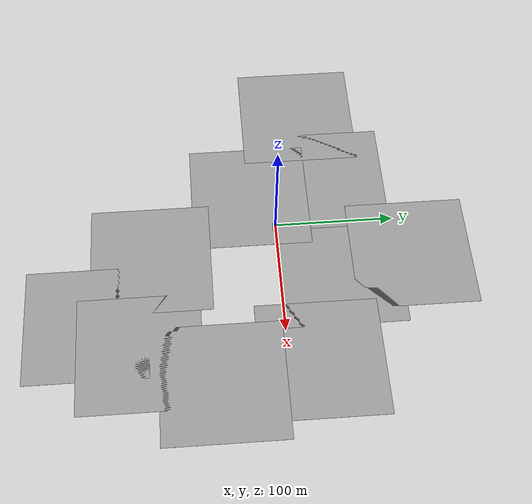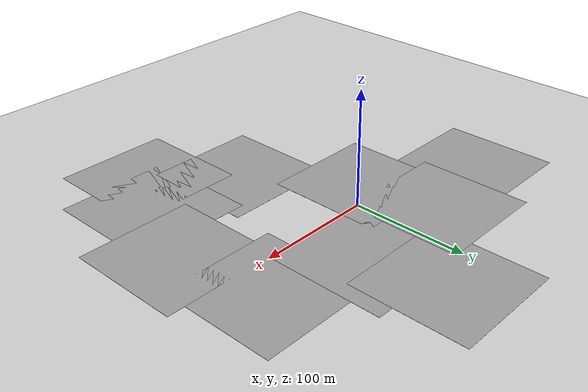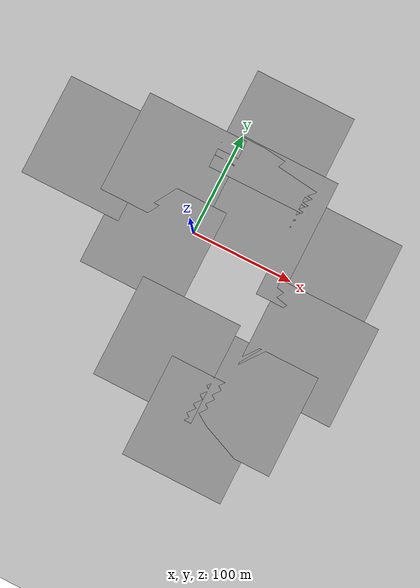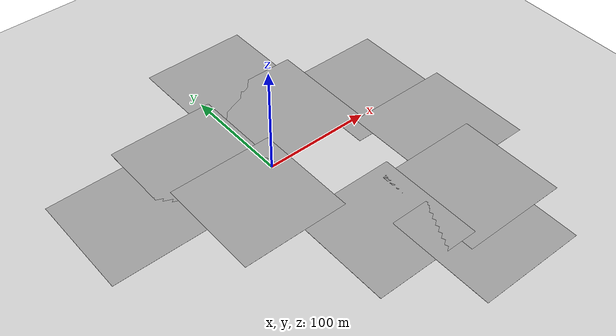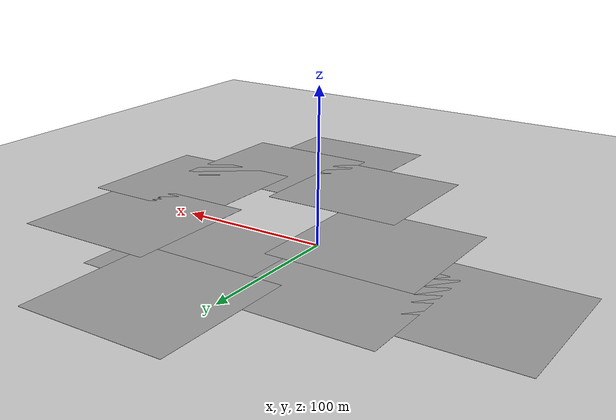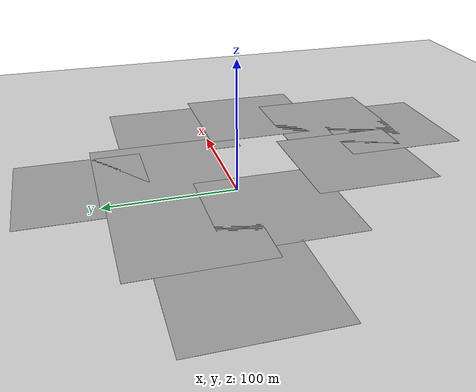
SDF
<sdf version="1.7">
 <world name="default">
  <gravity>0 0 -9.8</gravity>
  <magnetic_field>6e-06 2.3e-05 -4.2e-05</magnetic_field>
  <atmosphere type="adiabatic"/>
  <physics type="ode">
   <max_step_size>0.001</max_step_size>
   <real_time_factor>1</real_time_factor>
   <real_time_update_rate>1000</real_time_update_rate>
  </physics>
  <scene><ambient>0.4 0.4 0.4 1</ambient><background>0.7 0.7 0.7 1</background><shadows>1</shadows></scene>
  <light name="sun" type="directional">
   <pose>0 0 10 0 -0 0</pose>
   <diffuse>0.8 0.8 0.8 1</diffuse>
   <specular>0.2 0.2 0.2 1</specular>
   <attenuation>
    <range>1000</range>
    <constant>0.9</constant>
    <linear>0.01</linear>
    <quadratic>0.001</quadratic>
   </attenuation>
   <direction>-0.5 0.1 -0.9</direction>
   <spot><inner_angle>0</inner_angle><outer_angle>0</outer_angle><falloff>0</falloff></spot>
  </light>
  <spherical_coordinates>
   <surface_model>EARTH_WGS84</surface_model>
   <latitude_deg>0</latitude_deg>
   <longitude_deg>0</longitude_deg>
   <elevation>0</elevation>
   <heading_deg>0</heading_deg>
  </spherical_coordinates>
  <plugin name="gazebo_occupancy_map" filename="libgazebo_2Dmap_plugin.so">
   <map_resolution>0.1</map_resolution>
   <map_height>0.05</map_height>
   <map_size_x>500</map_size_x>
   <map_size_y>500</map_size_y>
   <init_robot_x>0</init_robot_x>
   <init_robot_y>0</init_robot_y>
  </plugin>
  <model name="ground_plane">
   <static>1</static>
   <link name="link">
    <collision name="collision">
     <geometry><plane><normal>0 0 1</normal><size>100 100</size></plane></geometry>
     <surface>
      <contact><collide_bitmask>65535</collide_bitmask></contact>
      <friction><ode><mu>100</mu><mu2>50</mu2></ode></friction>
     </surface>
    </collision>
    <visual name="visual">
     <cast_shadows>0</cast_shadows>
     <geometry><plane><normal>0 0 1</normal><size>100 100</size></plane></geometry>
     <material>
      <script><uri>file://media/materials/scripts/gazebo.material</uri><name>Gazebo/Grey</name></script>
     </material>
    </visual>
   </link>
   <pose>66.1782 -35.4296 0.3 0 -0 0</pose>
  </model>
  <model name="ground_plane_0">
   <static>1</static>
   <link name="link">
    <collision name="collision">
     <geometry><plane><normal>0 0 1</normal><size>100 100</size></plane></geometry>
     <surface>
      <contact><collide_bitmask>65535</collide_bitmask></contact>
      <friction><ode><mu>100</mu><mu2>50</mu2></ode></friction>
     </surface>
    </collision>
    <visual name="visual">
     <cast_shadows>0</cast_shadows>
     <geometry><plane><normal>0 0 1</normal><size>100 100</size></plane></geometry>
     <material>
      <script><uri>file://media/materials/scripts/gazebo.material</uri><name>Gazebo/Grey</name></script>
     </material>
    </visual>
   </link>
   <pose>48.2476 50.6076 0.3 0 -0 0</pose>
  </model>
  <model name="ground_plane_1">
   <static>1</static>
   <link name="link">
    <collision name="collision">
     <geometry><plane><normal>0 0 1</normal><size>100 100</size></plane></geometry>
     <surface>
      <contact><collide_bitmask>65535</collide_bitmask></contact>
      <friction><ode><mu>100</mu><mu2>50</mu2></ode></friction>
     </surface>
    </collision>
    <visual name="visual">
     <cast_shadows>0</cast_shadows>
     <geometry><plane><normal>0 0 1</normal><size>100 100</size></plane></geometry>
     <material>
      <script><uri>file://media/materials/scripts/gazebo.material</uri><name>Gazebo/Grey</name></script>
     </material>
    </visual>
   </link>
   <pose>-44.6161 47.3449 0.3 0 -0 0</pose>
  </model>
  <model name="ground_plane_2">
   <static>1</static>
   <link name="link">
    <collision name="collision">
     <geometry><plane><normal>0 0 1</normal><size>100 100</size></plane></geometry>
     <surface>
      <contact><collide_bitmask>65535</collide_bitmask></contact>
      <friction><ode><mu>100</mu><mu2>50</mu2></ode></friction>
     </surface>
    </collision>
    <visual name="visual">
     <cast_shadows>0</cast_shadows>
     <geometry><plane><normal>0 0 1</normal><size>100 100</size></plane></geometry>
     <material>
      <script><uri>file://media/materials/scripts/gazebo.material</uri><name>Gazebo/Grey</name></script>
     </material>
    </visual>
   </link>
   <pose>-116.631 28.1985 0.3 0 -0 0</pose>
  </model>
  <model name="ground_plane_3">
   <static>1</static>
   <link name="link">
    <collision name="collision">
     <geometry><plane><normal>0 0 1</normal><size>100 100</size></plane></geometry>
     <surface>
      <contact><collide_bitmask>65535</collide_bitmask></contact>
      <friction><ode><mu>100</mu><mu2>50</mu2></ode></friction>
     </surface>
    </collision>
    <visual name="visual">
     <cast_shadows>0</cast_shadows>
     <geometry><plane><normal>0 0 1</normal><size>100 100</size></plane></geometry>
     <material>
      <script><uri>file://media/materials/scripts/gazebo.material</uri><name>Gazebo/Grey</name></script>
     </material>
    </visual>
   </link>
   <pose>-30.9145 -20.3914 0.3 0 -0 0</pose>
  </model>
  <model name="ground_plane_4">
   <static>1</static>
   <link name="link">
    <collision name="collision">
     <geometry><plane><normal>0 0 1</normal><size>100 100</size></plane></geometry>
     <surface>
      <contact><collide_bitmask>65535</collide_bitmask></contact>
      <friction><ode><mu>100</mu><mu2>50</mu2></ode></friction>
     </surface>
    </collision>
    <visual name="visual">
     <cast_shadows>0</cast_shadows>
     <geometry><plane><normal>0 0 1</normal><size>100 100</size></plane></geometry>
     <material>
      <script><uri>file://media/materials/scripts/gazebo.material</uri><name>Gazebo/Grey</name></script>
     </material>
    </visual>
   </link>
   <pose>26.9687 -106.417 0.3 0 -0 0</pose>
  </model>
  <model name="ground_plane_5">
   <static>1</static>
   <link name="link">
    <collision name="collision">
     <geometry><plane><normal>0 0 1</normal><size>100 100</size></plane></geometry>
     <surface>
      <contact><collide_bitmask>65535</collide_bitmask></contact>
      <friction><ode><mu>100</mu><mu2>50</mu2></ode></friction>
     </surface>
    </collision>
    <visual name="visual">
     <cast_shadows>0</cast_shadows>
     <geometry><plane><normal>0 0 1</normal><size>100 100</size></plane></geometry>
     <material>
      <script><uri>file://media/materials/scripts/gazebo.material</uri><name>Gazebo/Grey</name></script>
     </material>
    </visual>
   </link>
   <pose>111.913 -116.968 0.3 0 -0 0</pose>
  </model>
  <model name="ground_plane_6">
   <static>1</static>
   <link name="link">
    <collision name="collision">
     <geometry><plane><normal>0 0 1</normal><size>100 100</size></plane></geometry>
     <surface>
      <contact><collide_bitmask>65535</collide_bitmask></contact>
      <friction><ode><mu>100</mu><mu2>50</mu2></ode></friction>
     </surface>
    </collision>
    <visual name="visual">
     <cast_shadows>0</cast_shadows>
     <geometry><plane><normal>0 0 1</normal><size>100 100</size></plane></geometry>
     <material>
      <script><uri>file://media/materials/scripts/gazebo.material</uri><name>Gazebo/Grey</name></script>
     </material>
    </visual>
   </link>
   <pose>83.7353 -159.161 0.3 0 -0 0</pose>
  </model>
  <model name="ground_plane_7">
   <static>1</static>
   <link name="link">
    <collision name="collision">
     <geometry><plane><normal>0 0 1</normal><size>100 100</size></plane></geometry>
     <surface>
      <contact><collide_bitmask>65535</collide_bitmask></contact>
      <friction><ode><mu>100</mu><mu2>50</mu2></ode></friction>
     </surface>
    </collision>
    <visual name="visual">
     <cast_shadows>0</cast_shadows>
     <geometry><plane><normal>0 0 1</normal><size>100 100</size></plane></geometry>
     <material>
      <script><uri>file://media/materials/scripts/gazebo.material</uri><name>Gazebo/Grey</name></script>
     </material>
    </visual>
   </link>
   <pose>141.12 -52.1016 0.3 0 -0 0</pose>
  </model>
  <model name="ground_plane_8">
   <static>1</static>
   <link name="link">
    <collision name="collision">
     <geometry><plane><normal>0 0 1</normal><size>100 100</size></plane></geometry>
     <surface>
      <contact><collide_bitmask>65535</collide_bitmask></contact>
      <friction><ode><mu>100</mu><mu2>50</mu2></ode></friction>
     </surface>
    </collision>
    <visual name="visual">
     <cast_shadows>0</cast_shadows>
     <geometry><plane><normal>0 0 1</normal><size>100 100</size></plane></geometry>
     <material>
      <script><uri>file://media/materials/scripts/gazebo.material</uri><name>Gazebo/Grey</name></script>
     </material>
    </visual>
   </link>
   <pose>126.391 26.0092 0.3 0 -0 0</pose>
  </model>
  <model name="ground_plane_9">
   <static>1</static>
   <link name="link">
    <collision name="collision">
     <geometry><plane><normal>0 0 1</normal><size>100 100</size></plane></geometry>
     <surface>
      <contact><collide_bitmask>65535</collide_bitmask></contact>
      <friction><ode><mu>100</mu><mu2>50</mu2></ode></friction>
     </surface>
    </collision>
    <visual name="visual">
     <cast_shadows>0</cast_shadows>
     <geometry><plane><normal>0 0 1</normal><size>100 100</size></plane></geometry>
     <material>
      <script><uri>file://media/materials/scripts/gazebo.material</uri><name>Gazebo/Grey</name></script>
     </material>
    </visual>
   </link>
   <pose>34.725 110.807 0.3 0 -0 0</pose>
  </model>
 </world>
</sdf>
